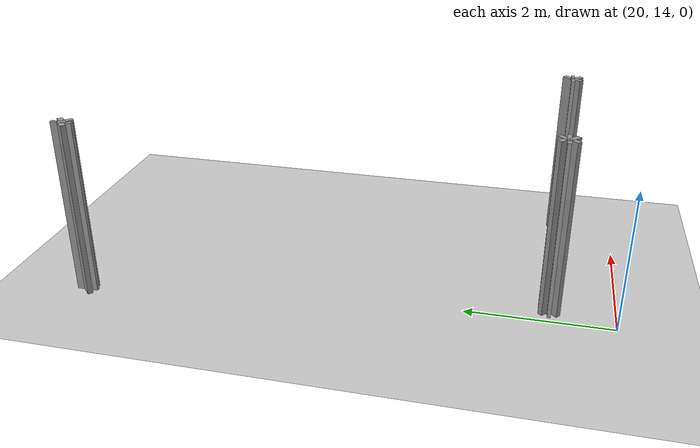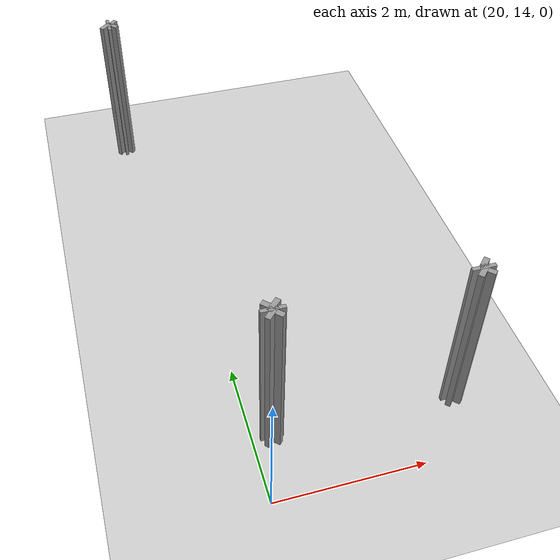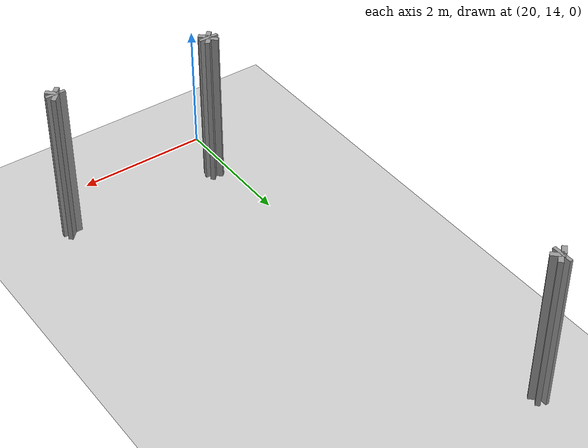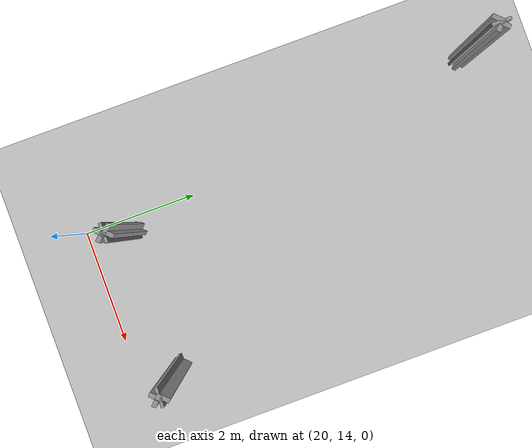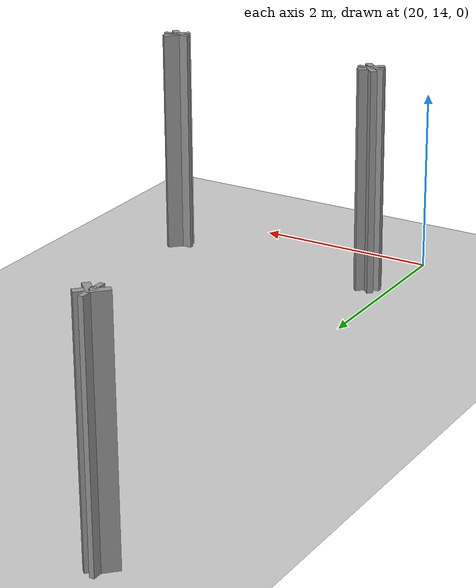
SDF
<sdf version="1.4">
 <world name="1_wall">
  <model name="ground_plane">
   <static>1</static>
   <link name="link">
    <collision name="collision">
     <geometry><plane><normal>0 0 1</normal><size>1000 1000</size></plane></geometry>
     <surface><friction><ode><mu>100</mu><mu2>50</mu2></ode></friction></surface>
    </collision>
    <visual name="visual">
     <cast_shadows>0</cast_shadows>
     <geometry><plane><normal>0 0 1</normal><size>10000 10000</size></plane></geometry>
     <material>
      <script><uri>file://media/materials/scripts/gazebo.material</uri><name>Gazebo/Grey</name></script>
     </material>
    </visual>
    <velocity_decay><linear>0</linear><angular>0</angular></velocity_decay>
   </link>
  </model>
  <model name="Wall_580">
   <static>1</static>
   <link name="Wall_580">
    <collision name="Wall_Collision_580">
     <geometry><box><size>0.07071067811865576 0.2 2.5</size></box></geometry>
     <pose>0 0 1.25 0 -0 0</pose>
    </collision>
    <visual name="Wall_Visual_580">
     <pose>0 0 1.25 0 -0 0</pose>
     <geometry><box><size>0.07071067811865576 0.2 2.5</size></box></geometry>
     <material>
      <script><uri>file://media/materials/scripts/gazebo.material</uri><name>Gazebo/Grey</name></script>
     </material>
    </visual>
    <velocity_decay><linear>0</linear><angular>0</angular></velocity_decay>
    <pose>19.325000000000003 21.175000000000004 0 0 0 -0.7853981633974483</pose>
   </link>
  </model>
  <model name="Wall_581">
   <static>1</static>
   <link name="Wall_581">
    <collision name="Wall_Collision_581">
     <geometry><box><size>0.05000000000000071 0.2 2.5</size></box></geometry>
     <pose>0 0 1.25 0 -0 0</pose>
    </collision>
    <visual name="Wall_Visual_581">
     <pose>0 0 1.25 0 -0 0</pose>
     <geometry><box><size>0.05000000000000071 0.2 2.5</size></box></geometry>
     <material>
      <script><uri>file://media/materials/scripts/gazebo.material</uri><name>Gazebo/Grey</name></script>
     </material>
    </visual>
    <velocity_decay><linear>0</linear><angular>0</angular></velocity_decay>
    <pose>19.375 21.150000000000002 0 0 0 0.0</pose>
   </link>
  </model>
  <model name="Wall_582">
   <static>1</static>
   <link name="Wall_582">
    <collision name="Wall_Collision_582">
     <geometry><box><size>0.07071067811865576 0.2 2.5</size></box></geometry>
     <pose>0 0 1.25 0 -0 0</pose>
    </collision>
    <visual name="Wall_Visual_582">
     <pose>0 0 1.25 0 -0 0</pose>
     <geometry><box><size>0.07071067811865576 0.2 2.5</size></box></geometry>
     <material>
      <script><uri>file://media/materials/scripts/gazebo.material</uri><name>Gazebo/Grey</name></script>
     </material>
    </visual>
    <velocity_decay><linear>0</linear><angular>0</angular></velocity_decay>
    <pose>19.425000000000004 21.175000000000004 0 0 0 0.7853981633974483</pose>
   </link>
  </model>
  <model name="Wall_583">
   <static>1</static>
   <link name="Wall_583">
    <collision name="Wall_Collision_583">
     <geometry><box><size>0.07071067811865325 0.2 2.5</size></box></geometry>
     <pose>0 0 1.25 0 -0 0</pose>
    </collision>
    <visual name="Wall_Visual_583">
     <pose>0 0 1.25 0 -0 0</pose>
     <geometry><box><size>0.07071067811865325 0.2 2.5</size></box></geometry>
     <material>
      <script><uri>file://media/materials/scripts/gazebo.material</uri><name>Gazebo/Grey</name></script>
     </material>
    </visual>
    <velocity_decay><linear>0</linear><angular>0</angular></velocity_decay>
    <pose>19.425000000000004 21.225 0 0 0 2.3561944901923804</pose>
   </link>
  </model>
  <model name="Wall_584">
   <static>1</static>
   <link name="Wall_584">
    <collision name="Wall_Collision_584">
     <geometry><box><size>0.05000000000000071 0.2 2.5</size></box></geometry>
     <pose>0 0 1.25 0 -0 0</pose>
    </collision>
    <visual name="Wall_Visual_584">
     <pose>0 0 1.25 0 -0 0</pose>
     <geometry><box><size>0.05000000000000071 0.2 2.5</size></box></geometry>
     <material>
      <script><uri>file://media/materials/scripts/gazebo.material</uri><name>Gazebo/Grey</name></script>
     </material>
    </visual>
    <velocity_decay><linear>0</linear><angular>0</angular></velocity_decay>
    <pose>19.375 21.25 0 0 0 3.141592653589793</pose>
   </link>
  </model>
  <model name="Wall_585">
   <static>1</static>
   <link name="Wall_585">
    <collision name="Wall_Collision_585">
     <geometry><box><size>0.049999999999998934 0.2 2.5</size></box></geometry>
     <pose>0 0 1.25 0 -0 0</pose>
    </collision>
    <visual name="Wall_Visual_585">
     <pose>0 0 1.25 0 -0 0</pose>
     <geometry><box><size>0.049999999999998934 0.2 2.5</size></box></geometry>
     <material>
      <script><uri>file://media/materials/scripts/gazebo.material</uri><name>Gazebo/Grey</name></script>
     </material>
    </visual>
    <velocity_decay><linear>0</linear><angular>0</angular></velocity_decay>
    <pose>20.200000000000003 14.875 0 0 0 -1.5707963267948966</pose>
   </link>
  </model>
  <model name="Wall_586">
   <static>1</static>
   <link name="Wall_586">
    <collision name="Wall_Collision_586">
     <geometry><box><size>0.07071067811865325 0.2 2.5</size></box></geometry>
     <pose>0 0 1.25 0 -0 0</pose>
    </collision>
    <visual name="Wall_Visual_586">
     <pose>0 0 1.25 0 -0 0</pose>
     <geometry><box><size>0.07071067811865325 0.2 2.5</size></box></geometry>
     <material>
      <script><uri>file://media/materials/scripts/gazebo.material</uri><name>Gazebo/Grey</name></script>
     </material>
    </visual>
    <velocity_decay><linear>0</linear><angular>0</angular></velocity_decay>
    <pose>20.225 14.825000000000001 0 0 0 -0.7853981633974838</pose>
   </link>
  </model>
  <model name="Wall_587">
   <static>1</static>
   <link name="Wall_587">
    <collision name="Wall_Collision_587">
     <geometry><box><size>0.07071067811865576 0.2 2.5</size></box></geometry>
     <pose>0 0 1.25 0 -0 0</pose>
    </collision>
    <visual name="Wall_Visual_587">
     <pose>0 0 1.25 0 -0 0</pose>
     <geometry><box><size>0.07071067811865576 0.2 2.5</size></box></geometry>
     <material>
      <script><uri>file://media/materials/scripts/gazebo.material</uri><name>Gazebo/Grey</name></script>
     </material>
    </visual>
    <velocity_decay><linear>0</linear><angular>0</angular></velocity_decay>
    <pose>20.275 14.825000000000001 0 0 0 0.7853981633974483</pose>
   </link>
  </model>
  <model name="Wall_588">
   <static>1</static>
   <link name="Wall_588">
    <collision name="Wall_Collision_588">
     <geometry><box><size>0.049999999999998934 0.2 2.5</size></box></geometry>
     <pose>0 0 1.25 0 -0 0</pose>
    </collision>
    <visual name="Wall_Visual_588">
     <pose>0 0 1.25 0 -0 0</pose>
     <geometry><box><size>0.049999999999998934 0.2 2.5</size></box></geometry>
     <material>
      <script><uri>file://media/materials/scripts/gazebo.material</uri><name>Gazebo/Grey</name></script>
     </material>
    </visual>
    <velocity_decay><linear>0</linear><angular>0</angular></velocity_decay>
    <pose>20.3 14.875 0 0 0 1.5707963267948966</pose>
   </link>
  </model>
  <model name="Wall_589">
   <static>1</static>
   <link name="Wall_589">
    <collision name="Wall_Collision_589">
     <geometry><box><size>0.07071067811865576 0.2 2.5</size></box></geometry>
     <pose>0 0 1.25 0 -0 0</pose>
    </collision>
    <visual name="Wall_Visual_589">
     <pose>0 0 1.25 0 -0 0</pose>
     <geometry><box><size>0.07071067811865576 0.2 2.5</size></box></geometry>
     <material>
      <script><uri>file://media/materials/scripts/gazebo.material</uri><name>Gazebo/Grey</name></script>
     </material>
    </visual>
    <velocity_decay><linear>0</linear><angular>0</angular></velocity_decay>
    <pose>20.275 14.925 0 0 0 2.356194490192345</pose>
   </link>
  </model>
  <model name="Wall_590">
   <static>1</static>
   <link name="Wall_590">
    <collision name="Wall_Collision_590">
     <geometry><box><size>0.07071067811865325 0.2 2.5</size></box></geometry>
     <pose>0 0 1.25 0 -0 0</pose>
    </collision>
    <visual name="Wall_Visual_590">
     <pose>0 0 1.25 0 -0 0</pose>
     <geometry><box><size>0.07071067811865325 0.2 2.5</size></box></geometry>
     <material>
      <script><uri>file://media/materials/scripts/gazebo.material</uri><name>Gazebo/Grey</name></script>
     </material>
    </visual>
    <velocity_decay><linear>0</linear><angular>0</angular></velocity_decay>
    <pose>20.225 14.925 0 0 0 -2.3561944901923093</pose>
   </link>
  </model>
  <model name="Wall_591">
   <static>1</static>
   <link name="Wall_591">
    <collision name="Wall_Collision_591">
     <geometry><box><size>0.05000000000000071 0.2 2.5</size></box></geometry>
     <pose>0 0 1.25 0 -0 0</pose>
    </collision>
    <visual name="Wall_Visual_591">
     <pose>0 0 1.25 0 -0 0</pose>
     <geometry><box><size>0.05000000000000071 0.2 2.5</size></box></geometry>
     <material>
      <script><uri>file://media/materials/scripts/gazebo.material</uri><name>Gazebo/Grey</name></script>
     </material>
    </visual>
    <velocity_decay><linear>0</linear><angular>0</angular></velocity_decay>
    <pose>22.650000000000002 14.825000000000001 0 0 0 -1.5707963267948966</pose>
   </link>
  </model>
  <model name="Wall_592">
   <static>1</static>
   <link name="Wall_592">
    <collision name="Wall_Collision_592">
     <geometry><box><size>0.07071067811865576 0.2 2.5</size></box></geometry>
     <pose>0 0 1.25 0 -0 0</pose>
    </collision>
    <visual name="Wall_Visual_592">
     <pose>0 0 1.25 0 -0 0</pose>
     <geometry><box><size>0.07071067811865576 0.2 2.5</size></box></geometry>
     <material>
      <script><uri>file://media/materials/scripts/gazebo.material</uri><name>Gazebo/Grey</name></script>
     </material>
    </visual>
    <velocity_decay><linear>0</linear><angular>0</angular></velocity_decay>
    <pose>22.675000000000004 14.775 0 0 0 -0.7853981633974483</pose>
   </link>
  </model>
  <model name="Wall_593">
   <static>1</static>
   <link name="Wall_593">
    <collision name="Wall_Collision_593">
     <geometry><box><size>0.07071067811865325 0.2 2.5</size></box></geometry>
     <pose>0 0 1.25 0 -0 0</pose>
    </collision>
    <visual name="Wall_Visual_593">
     <pose>0 0 1.25 0 -0 0</pose>
     <geometry><box><size>0.07071067811865325 0.2 2.5</size></box></geometry>
     <material>
      <script><uri>file://media/materials/scripts/gazebo.material</uri><name>Gazebo/Grey</name></script>
     </material>
    </visual>
    <velocity_decay><linear>0</linear><angular>0</angular></velocity_decay>
    <pose>22.725 14.775 0 0 0 0.7853981633974838</pose>
   </link>
  </model>
  <model name="Wall_594">
   <static>1</static>
   <link name="Wall_594">
    <collision name="Wall_Collision_594">
     <geometry><box><size>0.05000000000000071 0.2 2.5</size></box></geometry>
     <pose>0 0 1.25 0 -0 0</pose>
    </collision>
    <visual name="Wall_Visual_594">
     <pose>0 0 1.25 0 -0 0</pose>
     <geometry><box><size>0.05000000000000071 0.2 2.5</size></box></geometry>
     <material>
      <script><uri>file://media/materials/scripts/gazebo.material</uri><name>Gazebo/Grey</name></script>
     </material>
    </visual>
    <velocity_decay><linear>0</linear><angular>0</angular></velocity_decay>
    <pose>22.75 14.825000000000001 0 0 0 1.5707963267948966</pose>
   </link>
  </model>
  <model name="Wall_595">
   <static>1</static>
   <link name="Wall_595">
    <collision name="Wall_Collision_595">
     <geometry><box><size>0.07071067811865199 0.2 2.5</size></box></geometry>
     <pose>0 0 1.25 0 -0 0</pose>
    </collision>
    <visual name="Wall_Visual_595">
     <pose>0 0 1.25 0 -0 0</pose>
     <geometry><box><size>0.07071067811865199 0.2 2.5</size></box></geometry>
     <material>
      <script><uri>file://media/materials/scripts/gazebo.material</uri><name>Gazebo/Grey</name></script>
     </material>
    </visual>
    <velocity_decay><linear>0</linear><angular>0</angular></velocity_decay>
    <pose>22.725 14.875 0 0 0 2.356194490192327</pose>
   </link>
  </model>
 </world>
</sdf>
